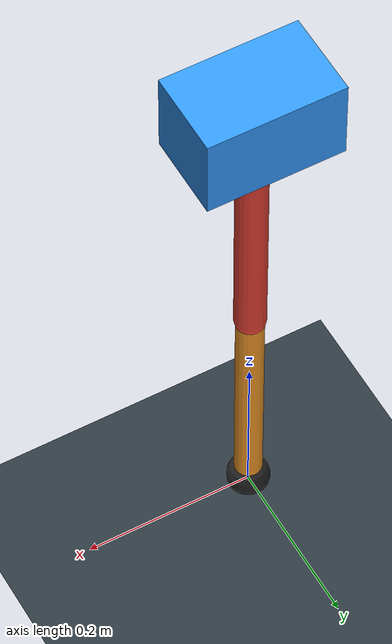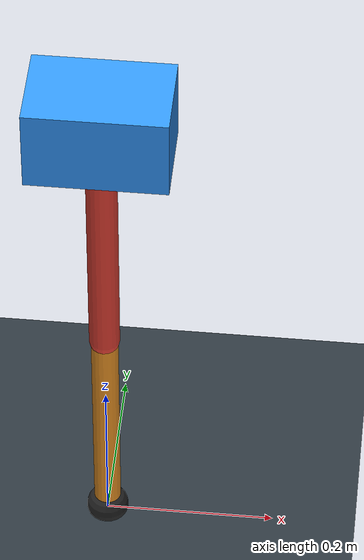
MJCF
<mujoco model="single_axis_two_bar">
  <compiler angle="radian" inertiafromgeom="true"/>
  <option timestep="0.001" integrator="implicitfast" gravity="0 0 -9.81"/>
  <default>
    <joint damping="0.08"/>
    <geom friction="1.2 0.01 0.0001" condim="3"/>
  </default>
  <worldbody>
    <geom name="floor" type="plane" size="5 5 0.1" rgba="0.18 0.22 0.25 1"/>
    <body name="carriage" pos="0 0 0.6364969592749077">
      <joint name="pole_slide" type="slide" axis="0 0 1"/>
      <geom name="payload" type="box" size="0.08 0.05 0.05" mass="1.9088202923602253" rgba="0.2 0.6 1 1"/>
      <body name="thigh" pos="0 0 0">
        <joint name="hip" type="hinge" axis="0 1 0"/>
        <geom name="thigh_link" type="capsule" fromto="0 0 0 0 0 -0.3400892318990501" size="0.018" mass="0.2423180716107848" rgba="0.9 0.25 0.2 1"/>
        <body name="shank" pos="0 0 -0.3400892318990501">
          <joint name="knee" type="hinge" axis="0 1 0"/>
          <geom name="shank_link" type="capsule" fromto="0 0 0 0 0 -0.29032000446683415" size="0.016" mass="0.20685683942301314" rgba="0.95 0.6 0.15 1"/>
          <geom name="foot" type="sphere" pos="0 0 -0.29032000446683415" size="0.025" mass="0.03" rgba="0.15 0.15 0.15 1"/>
          <site name="toe" pos="0 0 -0.29032000446683415" size="0.008"/>
        </body>
      </body>
    </body>
  </worldbody>
  <actuator>
    <motor name="hip_motor" joint="hip" ctrlrange="-25.136698695546762 25.136698695546762"/>
    <motor name="knee_motor" joint="knee" ctrlrange="-46.76483205365486 46.76483205365486"/>
  </actuator>
</mujoco>
